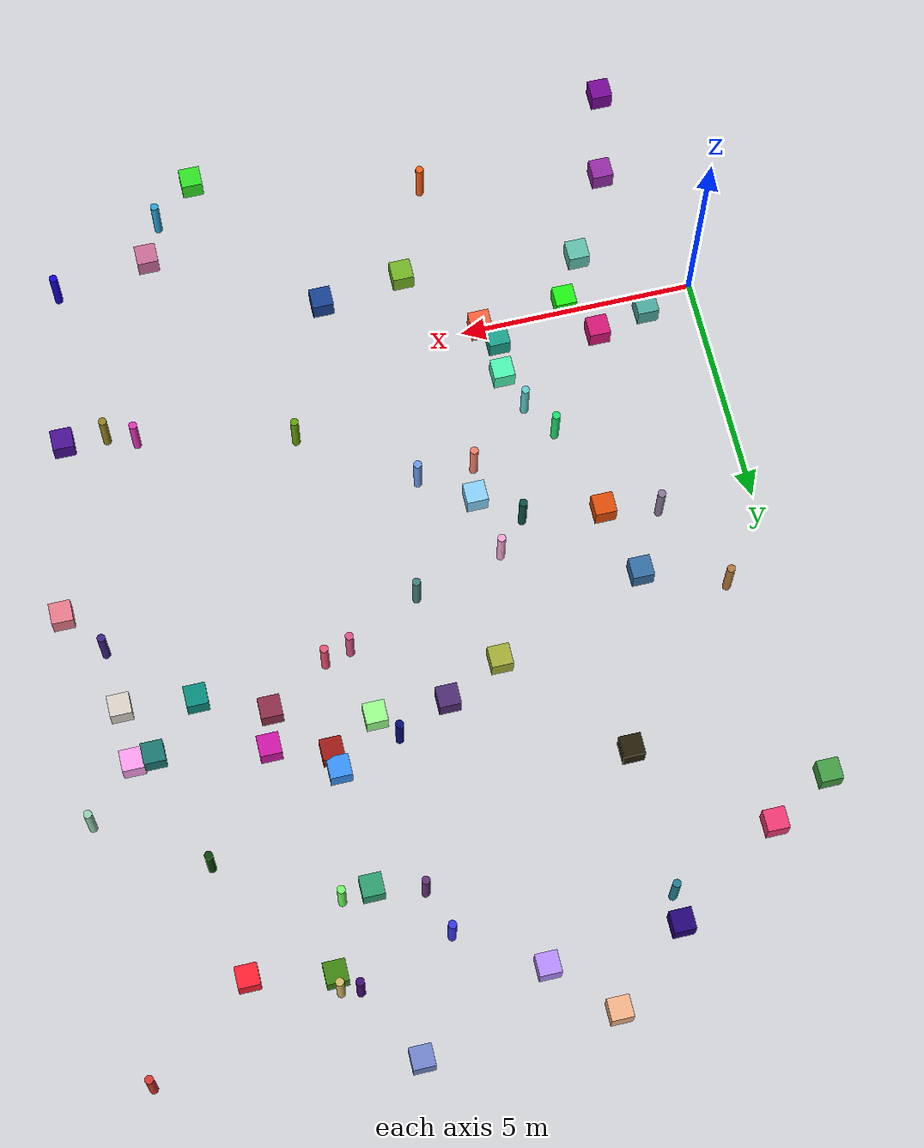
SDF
<sdf version="1.7">
 <world name="warehouse">
  <model name="ground_plane">
   <static>true</static>
   <link name="link">
    <collision name="collision">
     <geometry><plane><normal>0.0 0.0 1</normal><size>1 1</size></plane></geometry>
    </collision>
   </link>
  </model>
  <model name="unit_box_2">
   <static>true</static>
   <pose>10.55 12.86 0 0 0 0</pose>
   <link name="link">
    <collision name="collision">
     <geometry><box><size>0.450000 0.450000 0.450000</size></box></geometry>
    </collision>
    <visual name="visual">
     <geometry><box><size>0.450000 0.450000 0.450000</size></box></geometry>
     <material>
      <ambient>0.23850958302615732 0.5061640008966156 0.061965873634879265 1</ambient>
      <diffuse>0.23850958302615732 0.5061640008966156 0.061965873634879265 1</diffuse>
      <script><uri>file://media/materials/scripts/gazebo.material</uri><name>Gazebo/RandomColor2</name></script>
     </material>
    </visual>
   </link>
  </model>
  <model name="unit_box_3">
   <static>true</static>
   <pose>10.68 7.32 0 0 0 0</pose>
   <link name="link">
    <collision name="collision">
     <geometry><box><size>0.450000 0.450000 0.450000</size></box></geometry>
    </collision>
    <visual name="visual">
     <geometry><box><size>0.450000 0.450000 0.450000</size></box></geometry>
     <material>
      <ambient>0.5432476757430381 0.17729933388200625 0.28257987179646626 1</ambient>
      <diffuse>0.5432476757430381 0.17729933388200625 0.28257987179646626 1</diffuse>
      <script><uri>file://media/materials/scripts/gazebo.material</uri><name>Gazebo/RandomColor3</name></script>
     </material>
    </visual>
   </link>
  </model>
  <model name="unit_box_4">
   <static>true</static>
   <pose>13.61 6.59 0 0 0 0</pose>
   <link name="link">
    <collision name="collision">
     <geometry><box><size>0.450000 0.450000 0.450000</size></box></geometry>
    </collision>
    <visual name="visual">
     <geometry><box><size>0.450000 0.450000 0.450000</size></box></geometry>
     <material>
      <ambient>0.8401298544246089 0.8131445231318308 0.7653261206102966 1</ambient>
      <diffuse>0.8401298544246089 0.8131445231318308 0.7653261206102966 1</diffuse>
      <script><uri>file://media/materials/scripts/gazebo.material</uri><name>Gazebo/RandomColor4</name></script>
     </material>
    </visual>
   </link>
  </model>
  <model name="unit_cylinder_4">
   <static>true</static>
   <pose>4.72 4.29 0 0 0 0</pose>
   <link name="link">
    <collision name="collision">
     <geometry><cylinder><radius>0.085000</radius><length>1.000000</length></cylinder></geometry>
    </collision>
    <visual name="visual">
     <geometry><cylinder><radius>0.085000</radius><length>1.000000</length></cylinder></geometry>
     <material>
      <ambient>0.03826154303175866 0.310535022943797 0.2691551721576553 1</ambient>
      <diffuse>0.03826154303175866 0.310535022943797 0.2691551721576553 1</diffuse>
      <script><uri>file://media/materials/scripts/gazebo.material</uri><name>Gazebo/RandomColor4</name></script>
     </material>
    </visual>
   </link>
  </model>
  <model name="unit_box_5">
   <static>true</static>
   <pose>9.89 -4.94 0 0 0 0</pose>
   <link name="link">
    <collision name="collision">
     <geometry><box><size>0.450000 0.450000 0.450000</size></box></geometry>
    </collision>
    <visual name="visual">
     <geometry><box><size>0.450000 0.450000 0.450000</size></box></geometry>
     <material>
      <ambient>0.18305160549795496 0.8707921544052755 0.13400563533214793 1</ambient>
      <diffuse>0.18305160549795496 0.8707921544052755 0.13400563533214793 1</diffuse>
      <script><uri>file://media/materials/scripts/gazebo.material</uri><name>Gazebo/RandomColor5</name></script>
     </material>
    </visual>
   </link>
  </model>
  <model name="unit_box_6">
   <static>true</static>
   <pose>14.4 4.38 0 0 0 0</pose>
   <link name="link">
    <collision name="collision">
     <geometry><box><size>0.450000 0.450000 0.450000</size></box></geometry>
    </collision>
    <visual name="visual">
     <geometry><box><size>0.450000 0.450000 0.450000</size></box></geometry>
     <material>
      <ambient>0.8923392405059082 0.470771838638417 0.5278958681375123 1</ambient>
      <diffuse>0.8923392405059082 0.470771838638417 0.5278958681375123 1</diffuse>
      <script><uri>file://media/materials/scripts/gazebo.material</uri><name>Gazebo/RandomColor6</name></script>
     </material>
    </visual>
   </link>
  </model>
  <model name="unit_cylinder_7">
   <static>true</static>
   <pose>8.26 8.36 0 0 0 0</pose>
   <link name="link">
    <collision name="collision">
     <geometry><cylinder><radius>0.085000</radius><length>1.000000</length></cylinder></geometry>
    </collision>
    <visual name="visual">
     <geometry><cylinder><radius>0.085000</radius><length>1.000000</length></cylinder></geometry>
     <material>
      <ambient>0.010536000804149181 0.039938422784112415 0.44365025666165325 1</ambient>
      <diffuse>0.010536000804149181 0.039938422784112415 0.44365025666165325 1</diffuse>
      <script><uri>file://media/materials/scripts/gazebo.material</uri><name>Gazebo/RandomColor7</name></script>
     </material>
    </visual>
   </link>
  </model>
  <model name="unit_box_8">
   <static>true</static>
   <pose>9.6 8.85 0 0 0 0</pose>
   <link name="link">
    <collision name="collision">
     <geometry><box><size>0.450000 0.450000 0.450000</size></box></geometry>
    </collision>
    <visual name="visual">
     <geometry><box><size>0.450000 0.450000 0.450000</size></box></geometry>
     <material>
      <ambient>0.21281683753546676 0.5594621285025635 0.9515530543112825 1</ambient>
      <diffuse>0.21281683753546676 0.5594621285025635 0.9515530543112825 1</diffuse>
      <script><uri>file://media/materials/scripts/gazebo.material</uri><name>Gazebo/RandomColor8</name></script>
     </material>
    </visual>
   </link>
  </model>
  <model name="unit_box_9">
   <static>true</static>
   <pose>5.4 14.78 0 0 0 0</pose>
   <link name="link">
    <collision name="collision">
     <geometry><box><size>0.450000 0.450000 0.450000</size></box></geometry>
    </collision>
    <visual name="visual">
     <geometry><box><size>0.450000 0.450000 0.450000</size></box></geometry>
     <material>
      <ambient>0.9377994021996059 0.6914780809308397 0.5269026652407088 1</ambient>
      <diffuse>0.9377994021996059 0.6914780809308397 0.5269026652407088 1</diffuse>
      <script><uri>file://media/materials/scripts/gazebo.material</uri><name>Gazebo/RandomColor9</name></script>
     </material>
    </visual>
   </link>
  </model>
  <model name="unit_box_10">
   <static>true</static>
   <pose>0.16 11.13 0 0 0 0</pose>
   <link name="link">
    <collision name="collision">
     <geometry><box><size>0.450000 0.450000 0.450000</size></box></geometry>
    </collision>
    <visual name="visual">
     <geometry><box><size>0.450000 0.450000 0.450000</size></box></geometry>
     <material>
      <ambient>0.25730476471138275 0.6113861432114318 0.26210039634027194 1</ambient>
      <diffuse>0.25730476471138275 0.6113861432114318 0.26210039634027194 1</diffuse>
      <script><uri>file://media/materials/scripts/gazebo.material</uri><name>Gazebo/RandomColor10</name></script>
     </material>
    </visual>
   </link>
  </model>
  <model name="unit_cylinder_10">
   <static>true</static>
   <pose>9.38 6.47 0 0 0 0</pose>
   <link name="link">
    <collision name="collision">
     <geometry><cylinder><radius>0.085000</radius><length>1.000000</length></cylinder></geometry>
    </collision>
    <visual name="visual">
     <geometry><cylinder><radius>0.085000</radius><length>1.000000</length></cylinder></geometry>
     <material>
      <ambient>0.9181208071983159 0.3168006436108135 0.4392921452807552 1</ambient>
      <diffuse>0.9181208071983159 0.3168006436108135 0.4392921452807552 1</diffuse>
      <script><uri>file://media/materials/scripts/gazebo.material</uri><name>Gazebo/RandomColor10</name></script>
     </material>
    </visual>
   </link>
  </model>
  <model name="unit_box_12">
   <static>true</static>
   <pose>0.66 -5.08 0 0 0 0</pose>
   <link name="link">
    <collision name="collision">
     <geometry><box><size>0.450000 0.450000 0.450000</size></box></geometry>
    </collision>
    <visual name="visual">
     <geometry><box><size>0.450000 0.450000 0.450000</size></box></geometry>
     <material>
      <ambient>0.45986079268229807 0.023242793074265022 0.5792352809576616 1</ambient>
      <diffuse>0.45986079268229807 0.023242793074265022 0.5792352809576616 1</diffuse>
      <script><uri>file://media/materials/scripts/gazebo.material</uri><name>Gazebo/RandomColor12</name></script>
     </material>
    </visual>
   </link>
  </model>
  <model name="unit_cylinder_13">
   <static>true</static>
   <pose>13.69 5.23 0 0 0 0</pose>
   <link name="link">
    <collision name="collision">
     <geometry><cylinder><radius>0.085000</radius><length>1.000000</length></cylinder></geometry>
    </collision>
    <visual name="visual">
     <geometry><cylinder><radius>0.085000</radius><length>1.000000</length></cylinder></geometry>
     <material>
      <ambient>0.23840866738330357 0.12341911439382347 0.4981785556465306 1</ambient>
      <diffuse>0.23840866738330357 0.12341911439382347 0.4981785556465306 1</diffuse>
      <script><uri>file://media/materials/scripts/gazebo.material</uri><name>Gazebo/RandomColor13</name></script>
     </material>
    </visual>
   </link>
  </model>
  <model name="unit_box_15">
   <static>true</static>
   <pose>3.07 4.57 0 0 0 0</pose>
   <link name="link">
    <collision name="collision">
     <geometry><box><size>0.450000 0.450000 0.450000</size></box></geometry>
    </collision>
    <visual name="visual">
     <geometry><box><size>0.450000 0.450000 0.450000</size></box></geometry>
     <material>
      <ambient>0.8661199399045274 0.29588432611453774 0.029544778753045176 1</ambient>
      <diffuse>0.8661199399045274 0.29588432611453774 0.029544778753045176 1</diffuse>
      <script><uri>file://media/materials/scripts/gazebo.material</uri><name>Gazebo/RandomColor15</name></script>
     </material>
    </visual>
   </link>
  </model>
  <model name="unit_cylinder_15">
   <static>true</static>
   <pose>10.52 13.14 0 0 0 0</pose>
   <link name="link">
    <collision name="collision">
     <geometry><cylinder><radius>0.085000</radius><length>1.000000</length></cylinder></geometry>
    </collision>
    <visual name="visual">
     <geometry><cylinder><radius>0.085000</radius><length>1.000000</length></cylinder></geometry>
     <material>
      <ambient>0.8126317924130658 0.7037773503482371 0.380102691503139 1</ambient>
      <diffuse>0.8126317924130658 0.7037773503482371 0.380102691503139 1</diffuse>
      <script><uri>file://media/materials/scripts/gazebo.material</uri><name>Gazebo/RandomColor15</name></script>
     </material>
    </visual>
   </link>
  </model>
  <model name="unit_cylinder_20">
   <static>true</static>
   <pose>12.8 0.52 0 0 0 0</pose>
   <link name="link">
    <collision name="collision">
     <geometry><cylinder><radius>0.085000</radius><length>1.000000</length></cylinder></geometry>
    </collision>
    <visual name="visual">
     <geometry><cylinder><radius>0.085000</radius><length>1.000000</length></cylinder></geometry>
     <material>
      <ambient>0.5755740909761914 0.507086843042378 0.11988730785576618 1</ambient>
      <diffuse>0.5755740909761914 0.507086843042378 0.11988730785576618 1</diffuse>
      <script><uri>file://media/materials/scripts/gazebo.material</uri><name>Gazebo/RandomColor20</name></script>
     </material>
    </visual>
   </link>
  </model>
  <model name="unit_cylinder_23">
   <static>true</static>
   <pose>5.43 2.92 0 0 0 0</pose>
   <link name="link">
    <collision name="collision">
     <geometry><cylinder><radius>0.085000</radius><length>1.000000</length></cylinder></geometry>
    </collision>
    <visual name="visual">
     <geometry><cylinder><radius>0.085000</radius><length>1.000000</length></cylinder></geometry>
     <material>
      <ambient>0.9478658710452448 0.4894878169720396 0.4094010127505088 1</ambient>
      <diffuse>0.9478658710452448 0.4894878169720396 0.4094010127505088 1</diffuse>
      <script><uri>file://media/materials/scripts/gazebo.material</uri><name>Gazebo/RandomColor23</name></script>
     </material>
    </visual>
   </link>
  </model>
  <model name="unit_cylinder_25">
   <static>true</static>
   <pose>12.2 0.75 0 0 0 0</pose>
   <link name="link">
    <collision name="collision">
     <geometry><cylinder><radius>0.085000</radius><length>1.000000</length></cylinder></geometry>
    </collision>
    <visual name="visual">
     <geometry><cylinder><radius>0.085000</radius><length>1.000000</length></cylinder></geometry>
     <material>
      <ambient>0.8865542128697605 0.18408492666172915 0.717390722208998 1</ambient>
      <diffuse>0.8865542128697605 0.18408492666172915 0.717390722208998 1</diffuse>
      <script><uri>file://media/materials/scripts/gazebo.material</uri><name>Gazebo/RandomColor25</name></script>
     </material>
    </visual>
   </link>
  </model>
  <model name="unit_cylinder_26">
   <static>true</static>
   <pose>0.96 6.66 0 0 0 0</pose>
   <link name="link">
    <collision name="collision">
     <geometry><cylinder><radius>0.085000</radius><length>1.000000</length></cylinder></geometry>
    </collision>
    <visual name="visual">
     <geometry><cylinder><radius>0.085000</radius><length>1.000000</length></cylinder></geometry>
     <material>
      <ambient>0.686953396201328 0.4656829672532363 0.2211493216272601 1</ambient>
      <diffuse>0.686953396201328 0.4656829672532363 0.2211493216272601 1</diffuse>
      <script><uri>file://media/materials/scripts/gazebo.material</uri><name>Gazebo/RandomColor26</name></script>
     </material>
    </visual>
   </link>
  </model>
  <model name="unit_box_27">
   <static>true</static>
   <pose>2.14 -1.31 0 0 0 0</pose>
   <link name="link">
    <collision name="collision">
     <geometry><box><size>0.450000 0.450000 0.450000</size></box></geometry>
    </collision>
    <visual name="visual">
     <geometry><box><size>0.450000 0.450000 0.450000</size></box></geometry>
     <material>
      <ambient>0.37025055253567474 0.7417899858536134 0.6649591891728481 1</ambient>
      <diffuse>0.37025055253567474 0.7417899858536134 0.6649591891728481 1</diffuse>
      <script><uri>file://media/materials/scripts/gazebo.material</uri><name>Gazebo/RandomColor27</name></script>
     </material>
    </visual>
   </link>
  </model>
  <model name="unit_box_29">
   <static>true</static>
   <pose>7.74 -1.43 0 0 0 0</pose>
   <link name="link">
    <collision name="collision">
     <geometry><box><size>0.450000 0.450000 0.450000</size></box></geometry>
    </collision>
    <visual name="visual">
     <geometry><box><size>0.450000 0.450000 0.450000</size></box></geometry>
     <material>
      <ambient>0.08853986490662569 0.25148542035982946 0.5655840623429138 1</ambient>
      <diffuse>0.08853986490662569 0.25148542035982946 0.5655840623429138 1</diffuse>
      <script><uri>file://media/materials/scripts/gazebo.material</uri><name>Gazebo/RandomColor29</name></script>
     </material>
    </visual>
   </link>
  </model>
  <model name="unit_cylinder_31">
   <static>true</static>
   <pose>13.21 -3.01 0 0 0 0</pose>
   <link name="link">
    <collision name="collision">
     <geometry><cylinder><radius>0.085000</radius><length>1.000000</length></cylinder></geometry>
    </collision>
    <visual name="visual">
     <geometry><cylinder><radius>0.085000</radius><length>1.000000</length></cylinder></geometry>
     <material>
      <ambient>0.06348887067232933 0.000225115533346254 0.8224507910021019 1</ambient>
      <diffuse>0.06348887067232933 0.000225115533346254 0.8224507910021019 1</diffuse>
      <script><uri>file://media/materials/scripts/gazebo.material</uri><name>Gazebo/RandomColor31</name></script>
     </material>
    </visual>
   </link>
  </model>
  <model name="unit_box_33">
   <static>true</static>
   <pose>6.53 13.63 0 0 0 0</pose>
   <link name="link">
    <collision name="collision">
     <geometry><box><size>0.450000 0.450000 0.450000</size></box></geometry>
    </collision>
    <visual name="visual">
     <geometry><box><size>0.450000 0.450000 0.450000</size></box></geometry>
     <material>
      <ambient>0.702403424416619 0.5418101147669424 0.9927968698167303 1</ambient>
      <diffuse>0.702403424416619 0.5418101147669424 0.9927968698167303 1</diffuse>
      <script><uri>file://media/materials/scripts/gazebo.material</uri><name>Gazebo/RandomColor33</name></script>
     </material>
    </visual>
   </link>
  </model>
  <model name="unit_box_34">
   <static>true</static>
   <pose>9.5 11.35 0 0 0 0</pose>
   <link name="link">
    <collision name="collision">
     <geometry><box><size>0.450000 0.450000 0.450000</size></box></geometry>
    </collision>
    <visual name="visual">
     <geometry><box><size>0.450000 0.450000 0.450000</size></box></geometry>
     <material>
      <ambient>0.1780079980085253 0.611468211793352 0.43104366243897374 1</ambient>
      <diffuse>0.1780079980085253 0.611468211793352 0.43104366243897374 1</diffuse>
      <script><uri>file://media/materials/scripts/gazebo.material</uri><name>Gazebo/RandomColor34</name></script>
     </material>
    </visual>
   </link>
  </model>
  <model name="unit_cylinder_35">
   <static>true</static>
   <pose>8.83 6.32 0 0 0 0</pose>
   <link name="link">
    <collision name="collision">
     <geometry><cylinder><radius>0.085000</radius><length>1.000000</length></cylinder></geometry>
    </collision>
    <visual name="visual">
     <geometry><cylinder><radius>0.085000</radius><length>1.000000</length></cylinder></geometry>
     <material>
      <ambient>0.8539151065352031 0.3215232119992322 0.5152940750154221 1</ambient>
      <diffuse>0.8539151065352031 0.3215232119992322 0.5152940750154221 1</diffuse>
      <script><uri>file://media/materials/scripts/gazebo.material</uri><name>Gazebo/RandomColor35</name></script>
     </material>
    </visual>
   </link>
  </model>
  <model name="unit_box_38">
   <static>true</static>
   <pose>4.37 1.07 0 0 0 0</pose>
   <link name="link">
    <collision name="collision">
     <geometry><box><size>0.450000 0.450000 0.450000</size></box></geometry>
    </collision>
    <visual name="visual">
     <geometry><box><size>0.450000 0.450000 0.450000</size></box></geometry>
     <material>
      <ambient>0.2927778788437656 0.9480182921900523 0.684363040343383 1</ambient>
      <diffuse>0.2927778788437656 0.9480182921900523 0.684363040343383 1</diffuse>
      <script><uri>file://media/materials/scripts/gazebo.material</uri><name>Gazebo/RandomColor38</name></script>
     </material>
    </visual>
   </link>
  </model>
  <model name="unit_box_39">
   <static>true</static>
   <pose>11.18 -3.3 0 0 0 0</pose>
   <link name="link">
    <collision name="collision">
     <geometry><box><size>0.450000 0.450000 0.450000</size></box></geometry>
    </collision>
    <visual name="visual">
     <geometry><box><size>0.450000 0.450000 0.450000</size></box></geometry>
     <material>
      <ambient>0.7786381245641559 0.4130389778716671 0.5851752342778984 1</ambient>
      <diffuse>0.7786381245641559 0.4130389778716671 0.5851752342778984 1</diffuse>
      <script><uri>file://media/materials/scripts/gazebo.material</uri><name>Gazebo/RandomColor39</name></script>
     </material>
    </visual>
   </link>
  </model>
  <model name="unit_cylinder_39">
   <static>true</static>
   <pose>8.47 11.57 0 0 0 0</pose>
   <link name="link">
    <collision name="collision">
     <geometry><cylinder><radius>0.085000</radius><length>1.000000</length></cylinder></geometry>
    </collision>
    <visual name="visual">
     <geometry><cylinder><radius>0.085000</radius><length>1.000000</length></cylinder></geometry>
     <material>
      <ambient>0.3877980092694633 0.1951527330482452 0.438505996996847 1</ambient>
      <diffuse>0.3877980092694633 0.1951527330482452 0.438505996996847 1</diffuse>
      <script><uri>file://media/materials/scripts/gazebo.material</uri><name>Gazebo/RandomColor39</name></script>
     </material>
    </visual>
   </link>
  </model>
  <model name="unit_box_40">
   <static>true</static>
   <pose>3.79 13.4 0 0 0 0</pose>
   <link name="link">
    <collision name="collision">
     <geometry><box><size>0.450000 0.450000 0.450000</size></box></geometry>
    </collision>
    <visual name="visual">
     <geometry><box><size>0.450000 0.450000 0.450000</size></box></geometry>
     <material>
      <ambient>0.1386908573366249 0.010163796166887895 0.45943917340243945 1</ambient>
      <diffuse>0.1386908573366249 0.010163796166887895 0.45943917340243945 1</diffuse>
      <script><uri>file://media/materials/scripts/gazebo.material</uri><name>Gazebo/RandomColor40</name></script>
     </material>
    </visual>
   </link>
  </model>
  <model name="unit_cylinder_41">
   <static>true</static>
   <pose>6.64 2.96 0 0 0 0</pose>
   <link name="link">
    <collision name="collision">
     <geometry><cylinder><radius>0.085000</radius><length>1.000000</length></cylinder></geometry>
    </collision>
    <visual name="visual">
     <geometry><cylinder><radius>0.085000</radius><length>1.000000</length></cylinder></geometry>
     <material>
      <ambient>0.41349737645447837 0.5975948967662924 0.911855635894792 1</ambient>
      <diffuse>0.41349737645447837 0.5975948967662924 0.911855635894792 1</diffuse>
      <script><uri>file://media/materials/scripts/gazebo.material</uri><name>Gazebo/RandomColor41</name></script>
     </material>
    </visual>
   </link>
  </model>
  <model name="unit_cylinder_42">
   <static>true</static>
   <pose>14.41 14.14 0 0 0 0</pose>
   <link name="link">
    <collision name="collision">
     <geometry><cylinder><radius>0.085000</radius><length>1.000000</length></cylinder></geometry>
    </collision>
    <visual name="visual">
     <geometry><cylinder><radius>0.085000</radius><length>1.000000</length></cylinder></geometry>
     <material>
      <ambient>0.8209584722352827 0.2142266768646206 0.18860181266316212 1</ambient>
      <diffuse>0.8209584722352827 0.2142266768646206 0.18860181266316212 1</diffuse>
      <script><uri>file://media/materials/scripts/gazebo.material</uri><name>Gazebo/RandomColor42</name></script>
     </material>
    </visual>
   </link>
  </model>
  <model name="unit_cylinder_45">
   <static>true</static>
   <pose>10.11 11.38 0 0 0 0</pose>
   <link name="link">
    <collision name="collision">
     <geometry><cylinder><radius>0.085000</radius><length>1.000000</length></cylinder></geometry>
    </collision>
    <visual name="visual">
     <geometry><cylinder><radius>0.085000</radius><length>1.000000</length></cylinder></geometry>
     <material>
      <ambient>0.4287954457153922 0.9811067562694662 0.38207042416312464 1</ambient>
      <diffuse>0.4287954457153922 0.9811067562694662 0.38207042416312464 1</diffuse>
      <script><uri>file://media/materials/scripts/gazebo.material</uri><name>Gazebo/RandomColor45</name></script>
     </material>
    </visual>
   </link>
  </model>
  <model name="unit_box_46">
   <static>true</static>
   <pose>13.14 7.72 0 0 0 0</pose>
   <link name="link">
    <collision name="collision">
     <geometry><box><size>0.450000 0.450000 0.450000</size></box></geometry>
    </collision>
    <visual name="visual">
     <geometry><box><size>0.450000 0.450000 0.450000</size></box></geometry>
     <material>
      <ambient>0.10025197685317166 0.4576076244781885 0.43779821245072115 1</ambient>
      <diffuse>0.10025197685317166 0.4576076244781885 0.43779821245072115 1</diffuse>
      <script><uri>file://media/materials/scripts/gazebo.material</uri><name>Gazebo/RandomColor46</name></script>
     </material>
    </visual>
   </link>
  </model>
  <model name="unit_cylinder_47">
   <static>true</static>
   <pose>8.17 12.54 0 0 0 0</pose>
   <link name="link">
    <collision name="collision">
     <geometry><cylinder><radius>0.085000</radius><length>1.000000</length></cylinder></geometry>
    </collision>
    <visual name="visual">
     <geometry><cylinder><radius>0.085000</radius><length>1.000000</length></cylinder></geometry>
     <material>
      <ambient>0.2012320646055873 0.20602482604131478 0.8990667952803477 1</ambient>
      <diffuse>0.2012320646055873 0.20602482604131478 0.8990667952803477 1</diffuse>
      <script><uri>file://media/materials/scripts/gazebo.material</uri><name>Gazebo/RandomColor47</name></script>
     </material>
    </visual>
   </link>
  </model>
  <model name="unit_box_48">
   <static>true</static>
   <pose>9.66 8.45 0 0 0 0</pose>
   <link name="link">
    <collision name="collision">
     <geometry><box><size>0.450000 0.450000 0.450000</size></box></geometry>
    </collision>
    <visual name="visual">
     <geometry><box><size>0.450000 0.450000 0.450000</size></box></geometry>
     <material>
      <ambient>0.605724075882297 0.10081493656568108 0.08209861471716706 1</ambient>
      <diffuse>0.605724075882297 0.10081493656568108 0.08209861471716706 1</diffuse>
      <script><uri>file://media/materials/scripts/gazebo.material</uri><name>Gazebo/RandomColor48</name></script>
     </material>
    </visual>
   </link>
  </model>
  <model name="unit_cylinder_49">
   <static>true</static>
   <pose>10.14 13.22 0 0 0 0</pose>
   <link name="link">
    <collision name="collision">
     <geometry><cylinder><radius>0.085000</radius><length>1.000000</length></cylinder></geometry>
    </collision>
    <visual name="visual">
     <geometry><cylinder><radius>0.085000</radius><length>1.000000</length></cylinder></geometry>
     <material>
      <ambient>0.25745490974547813 0.03996092741751278 0.45660745375823275 1</ambient>
      <diffuse>0.25745490974547813 0.03996092741751278 0.45660745375823275 1</diffuse>
      <script><uri>file://media/materials/scripts/gazebo.material</uri><name>Gazebo/RandomColor49</name></script>
     </material>
    </visual>
   </link>
  </model>
  <model name="unit_box_50">
   <static>true</static>
   <pose>5.94 7.31 0 0 0 0</pose>
   <link name="link">
    <collision name="collision">
     <geometry><box><size>0.450000 0.450000 0.450000</size></box></geometry>
    </collision>
    <visual name="visual">
     <geometry><box><size>0.450000 0.450000 0.450000</size></box></geometry>
     <material>
      <ambient>0.6305234976059718 0.6696769162737498 0.20605627490768474 1</ambient>
      <diffuse>0.6305234976059718 0.6696769162737498 0.20605627490768474 1</diffuse>
      <script><uri>file://media/materials/scripts/gazebo.material</uri><name>Gazebo/RandomColor50</name></script>
     </material>
    </visual>
   </link>
  </model>
  <model name="unit_cylinder_50">
   <static>true</static>
   <pose>4.06 1.81 0 0 0 0</pose>
   <link name="link">
    <collision name="collision">
     <geometry><cylinder><radius>0.085000</radius><length>1.000000</length></cylinder></geometry>
    </collision>
    <visual name="visual">
     <geometry><cylinder><radius>0.085000</radius><length>1.000000</length></cylinder></geometry>
     <material>
      <ambient>0.35264039181900086 0.7894920764071337 0.783793385177628 1</ambient>
      <diffuse>0.35264039181900086 0.7894920764071337 0.783793385177628 1</diffuse>
      <script><uri>file://media/materials/scripts/gazebo.material</uri><name>Gazebo/RandomColor50</name></script>
     </material>
    </visual>
   </link>
  </model>
  <model name="unit_box_54">
   <static>true</static>
   <pose>10.86 8.09 0 0 0 0</pose>
   <link name="link">
    <collision name="collision">
     <geometry><box><size>0.450000 0.450000 0.450000</size></box></geometry>
    </collision>
    <visual name="visual">
     <geometry><box><size>0.450000 0.450000 0.450000</size></box></geometry>
     <material>
      <ambient>0.7998472057367785 0.08087824899829865 0.6432411266776925 1</ambient>
      <diffuse>0.7998472057367785 0.08087824899829865 0.6432411266776925 1</diffuse>
      <script><uri>file://media/materials/scripts/gazebo.material</uri><name>Gazebo/RandomColor54</name></script>
     </material>
    </visual>
   </link>
  </model>
  <model name="unit_cylinder_54">
   <static>true</static>
   <pose>14.61 8.78 0 0 0 0</pose>
   <link name="link">
    <collision name="collision">
     <geometry><cylinder><radius>0.085000</radius><length>1.000000</length></cylinder></geometry>
    </collision>
    <visual name="visual">
     <geometry><cylinder><radius>0.085000</radius><length>1.000000</length></cylinder></geometry>
     <material>
      <ambient>0.5859668088460298 0.8143870872489025 0.6865961629997342 1</ambient>
      <diffuse>0.5859668088460298 0.8143870872489025 0.6865961629997342 1</diffuse>
      <script><uri>file://media/materials/scripts/gazebo.material</uri><name>Gazebo/RandomColor54</name></script>
     </material>
    </visual>
   </link>
  </model>
  <model name="unit_cylinder_56">
   <static>true</static>
   <pose>12.47 10.13 0 0 0 0</pose>
   <link name="link">
    <collision name="collision">
     <geometry><cylinder><radius>0.085000</radius><length>1.000000</length></cylinder></geometry>
    </collision>
    <visual name="visual">
     <geometry><cylinder><radius>0.085000</radius><length>1.000000</length></cylinder></geometry>
     <material>
      <ambient>0.05102335867061558 0.2537253547134757 0.03383159158420368 1</ambient>
      <diffuse>0.05102335867061558 0.2537253547134757 0.03383159158420368 1</diffuse>
      <script><uri>file://media/materials/scripts/gazebo.material</uri><name>Gazebo/RandomColor56</name></script>
     </material>
    </visual>
   </link>
  </model>
  <model name="unit_box_59">
   <static>true</static>
   <pose>2.68 6.1 0 0 0 0</pose>
   <link name="link">
    <collision name="collision">
     <geometry><box><size>0.450000 0.450000 0.450000</size></box></geometry>
    </collision>
    <visual name="visual">
     <geometry><box><size>0.450000 0.450000 0.450000</size></box></geometry>
     <material>
      <ambient>0.2042996546160466 0.42713352780091296 0.6390738888633645 1</ambient>
      <diffuse>0.2042996546160466 0.42713352780091296 0.6390738888633645 1</diffuse>
      <script><uri>file://media/materials/scripts/gazebo.material</uri><name>Gazebo/RandomColor59</name></script>
     </material>
    </visual>
   </link>
  </model>
  <model name="unit_cylinder_59">
   <static>true</static>
   <pose>7.25 5.49 0 0 0 0</pose>
   <link name="link">
    <collision name="collision">
     <geometry><cylinder><radius>0.085000</radius><length>1.000000</length></cylinder></geometry>
    </collision>
    <visual name="visual">
     <geometry><cylinder><radius>0.085000</radius><length>1.000000</length></cylinder></geometry>
     <material>
      <ambient>0.26046538899934624 0.492396915082982 0.4865047837304928 1</ambient>
      <diffuse>0.26046538899934624 0.492396915082982 0.4865047837304928 1</diffuse>
      <script><uri>file://media/materials/scripts/gazebo.material</uri><name>Gazebo/RandomColor59</name></script>
     </material>
    </visual>
   </link>
  </model>
  <model name="unit_box_61">
   <static>true</static>
   <pose>5.59 3.71 0 0 0 0</pose>
   <link name="link">
    <collision name="collision">
     <geometry><box><size>0.450000 0.450000 0.450000</size></box></geometry>
    </collision>
    <visual name="visual">
     <geometry><box><size>0.450000 0.450000 0.450000</size></box></geometry>
     <material>
      <ambient>0.523514731618297 0.8060988676416797 0.9675638661988653 1</ambient>
      <diffuse>0.523514731618297 0.8060988676416797 0.9675638661988653 1</diffuse>
      <script><uri>file://media/materials/scripts/gazebo.material</uri><name>Gazebo/RandomColor61</name></script>
     </material>
    </visual>
   </link>
  </model>
  <model name="unit_box_62">
   <static>true</static>
   <pose>4.57 -0.12 0 0 0 0</pose>
   <link name="link">
    <collision name="collision">
     <geometry><box><size>0.450000 0.450000 0.450000</size></box></geometry>
    </collision>
    <visual name="visual">
     <geometry><box><size>0.450000 0.450000 0.450000</size></box></geometry>
     <material>
      <ambient>0.9959005780951022 0.36970751850778094 0.2223765498812077 1</ambient>
      <diffuse>0.9959005780951022 0.36970751850778094 0.2223765498812077 1</diffuse>
      <script><uri>file://media/materials/scripts/gazebo.material</uri><name>Gazebo/RandomColor62</name></script>
     </material>
    </visual>
   </link>
  </model>
  <model name="unit_cylinder_65">
   <static>true</static>
   <pose>3.75 12.74 0 0 0 0</pose>
   <link name="link">
    <collision name="collision">
     <geometry><cylinder><radius>0.085000</radius><length>1.000000</length></cylinder></geometry>
    </collision>
    <visual name="visual">
     <geometry><cylinder><radius>0.085000</radius><length>1.000000</length></cylinder></geometry>
     <material>
      <ambient>0.13176093010032264 0.48754617373114173 0.5693442487533782 1</ambient>
      <diffuse>0.13176093010032264 0.48754617373114173 0.5693442487533782 1</diffuse>
      <script><uri>file://media/materials/scripts/gazebo.material</uri><name>Gazebo/RandomColor65</name></script>
     </material>
    </visual>
   </link>
  </model>
  <model name="unit_box_67">
   <static>true</static>
   <pose>3.84 9.75 0 0 0 0</pose>
   <link name="link">
    <collision name="collision">
     <geometry><box><size>0.450000 0.450000 0.450000</size></box></geometry>
    </collision>
    <visual name="visual">
     <geometry><box><size>0.450000 0.450000 0.450000</size></box></geometry>
     <material>
      <ambient>0.14077522819482313 0.11579308115572773 0.03395788350114193 1</ambient>
      <diffuse>0.14077522819482313 0.11579308115572773 0.03395788350114193 1</diffuse>
      <script><uri>file://media/materials/scripts/gazebo.material</uri><name>Gazebo/RandomColor67</name></script>
     </material>
    </visual>
   </link>
  </model>
  <model name="unit_box_69">
   <static>true</static>
   <pose>8.66 7.91 0 0 0 0</pose>
   <link name="link">
    <collision name="collision">
     <geometry><box><size>0.450000 0.450000 0.450000</size></box></geometry>
    </collision>
    <visual name="visual">
     <geometry><box><size>0.450000 0.450000 0.450000</size></box></geometry>
     <material>
      <ambient>0.5927844495455863 0.9980428060357233 0.5343772812028614 1</ambient>
      <diffuse>0.5927844495455863 0.9980428060357233 0.5343772812028614 1</diffuse>
      <script><uri>file://media/materials/scripts/gazebo.material</uri><name>Gazebo/RandomColor69</name></script>
     </material>
    </visual>
   </link>
  </model>
  <model name="unit_box_71">
   <static>true</static>
   <pose>2.68 -0.3 0 0 0 0</pose>
   <link name="link">
    <collision name="collision">
     <geometry><box><size>0.450000 0.450000 0.450000</size></box></geometry>
    </collision>
    <visual name="visual">
     <geometry><box><size>0.450000 0.450000 0.450000</size></box></geometry>
     <material>
      <ambient>0.11210185905878645 0.9461158609950033 0.07738603134057331 1</ambient>
      <diffuse>0.11210185905878645 0.9461158609950033 0.07738603134057331 1</diffuse>
      <script><uri>file://media/materials/scripts/gazebo.material</uri><name>Gazebo/RandomColor71</name></script>
     </material>
    </visual>
   </link>
  </model>
  <model name="unit_cylinder_71">
   <static>true</static>
   <pose>3.58 2.53 0 0 0 0</pose>
   <link name="link">
    <collision name="collision">
     <geometry><cylinder><radius>0.085000</radius><length>1.000000</length></cylinder></geometry>
    </collision>
    <visual name="visual">
     <geometry><cylinder><radius>0.085000</radius><length>1.000000</length></cylinder></geometry>
     <material>
      <ambient>0.09981556840185157 0.8637271090058668 0.4143514928484049 1</ambient>
      <diffuse>0.09981556840185157 0.8637271090058668 0.4143514928484049 1</diffuse>
      <script><uri>file://media/materials/scripts/gazebo.material</uri><name>Gazebo/RandomColor71</name></script>
     </material>
    </visual>
   </link>
  </model>
  <model name="unit_box_72">
   <static>true</static>
   <pose>1.47 11.86 0 0 0 0</pose>
   <link name="link">
    <collision name="collision">
     <geometry><box><size>0.450000 0.450000 0.450000</size></box></geometry>
    </collision>
    <visual name="visual">
     <geometry><box><size>0.450000 0.450000 0.450000</size></box></geometry>
     <material>
      <ambient>0.9250623621863483 0.21653585141902598 0.4470640349881442 1</ambient>
      <diffuse>0.9250623621863483 0.21653585141902598 0.4470640349881442 1</diffuse>
      <script><uri>file://media/materials/scripts/gazebo.material</uri><name>Gazebo/RandomColor72</name></script>
     </material>
    </visual>
   </link>
  </model>
  <model name="unit_box_74">
   <static>true</static>
   <pose>5.93 -1.68 0 0 0 0</pose>
   <link name="link">
    <collision name="collision">
     <geometry><box><size>0.450000 0.450000 0.450000</size></box></geometry>
    </collision>
    <visual name="visual">
     <geometry><box><size>0.450000 0.450000 0.450000</size></box></geometry>
     <material>
      <ambient>0.4438858994824437 0.6968247603557725 0.13777167728775686 1</ambient>
      <diffuse>0.4438858994824437 0.6968247603557725 0.13777167728775686 1</diffuse>
      <script><uri>file://media/materials/scripts/gazebo.material</uri><name>Gazebo/RandomColor74</name></script>
     </material>
    </visual>
   </link>
  </model>
  <model name="unit_cylinder_74">
   <static>true</static>
   <pose>5.34 4.95 0 0 0 0</pose>
   <link name="link">
    <collision name="collision">
     <geometry><cylinder><radius>0.085000</radius><length>1.000000</length></cylinder></geometry>
    </collision>
    <visual name="visual">
     <geometry><cylinder><radius>0.085000</radius><length>1.000000</length></cylinder></geometry>
     <material>
      <ambient>0.9563099511265352 0.6280682894849667 0.8289432899159922 1</ambient>
      <diffuse>0.9563099511265352 0.6280682894849667 0.8289432899159922 1</diffuse>
      <script><uri>file://media/materials/scripts/gazebo.material</uri><name>Gazebo/RandomColor74</name></script>
     </material>
    </visual>
   </link>
  </model>
  <model name="unit_box_78">
   <static>true</static>
   <pose>13.58 7.77 0 0 0 0</pose>
   <link name="link">
    <collision name="collision">
     <geometry><box><size>0.450000 0.450000 0.450000</size></box></geometry>
    </collision>
    <visual name="visual">
     <geometry><box><size>0.450000 0.450000 0.450000</size></box></geometry>
     <material>
      <ambient>0.9850924715495643 0.6042477527806853 0.9182737187920098 1</ambient>
      <diffuse>0.9850924715495643 0.6042477527806853 0.9182737187920098 1</diffuse>
      <script><uri>file://media/materials/scripts/gazebo.material</uri><name>Gazebo/RandomColor78</name></script>
     </material>
    </visual>
   </link>
  </model>
  <model name="unit_cylinder_81">
   <static>true</static>
   <pose>1.9 4.74 0 0 0 0</pose>
   <link name="link">
    <collision name="collision">
     <geometry><cylinder><radius>0.085000</radius><length>1.000000</length></cylinder></geometry>
    </collision>
    <visual name="visual">
     <geometry><cylinder><radius>0.085000</radius><length>1.000000</length></cylinder></geometry>
     <material>
      <ambient>0.5308084278940789 0.4481121746108835 0.581603014593629 1</ambient>
      <diffuse>0.5308084278940789 0.4481121746108835 0.581603014593629 1</diffuse>
      <script><uri>file://media/materials/scripts/gazebo.material</uri><name>Gazebo/RandomColor81</name></script>
     </material>
    </visual>
   </link>
  </model>
  <model name="unit_box_82">
   <static>true</static>
   <pose>12.22 12.55 0 0 0 0</pose>
   <link name="link">
    <collision name="collision">
     <geometry><box><size>0.450000 0.450000 0.450000</size></box></geometry>
    </collision>
    <visual name="visual">
     <geometry><box><size>0.450000 0.450000 0.450000</size></box></geometry>
     <material>
      <ambient>0.9811720095047642 0.12247599974686108 0.18467837393876463 1</ambient>
      <diffuse>0.9811720095047642 0.12247599974686108 0.18467837393876463 1</diffuse>
      <script><uri>file://media/materials/scripts/gazebo.material</uri><name>Gazebo/RandomColor82</name></script>
     </material>
    </visual>
   </link>
  </model>
  <model name="unit_cylinder_83">
   <static>true</static>
   <pose>10.79 -4.23 0 0 0 0</pose>
   <link name="link">
    <collision name="collision">
     <geometry><cylinder><radius>0.085000</radius><length>1.000000</length></cylinder></geometry>
    </collision>
    <visual name="visual">
     <geometry><cylinder><radius>0.085000</radius><length>1.000000</length></cylinder></geometry>
     <material>
      <ambient>0.1523099545182035 0.6279569836868404 0.8379359753998362 1</ambient>
      <diffuse>0.1523099545182035 0.6279569836868404 0.8379359753998362 1</diffuse>
      <script><uri>file://media/materials/scripts/gazebo.material</uri><name>Gazebo/RandomColor83</name></script>
     </material>
    </visual>
   </link>
  </model>
  <model name="unit_box_86">
   <static>true</static>
   <pose>7.16 7.9 0 0 0 0</pose>
   <link name="link">
    <collision name="collision">
     <geometry><box><size>0.450000 0.450000 0.450000</size></box></geometry>
    </collision>
    <visual name="visual">
     <geometry><box><size>0.450000 0.450000 0.450000</size></box></geometry>
     <material>
      <ambient>0.308476544766462 0.16556459544225466 0.4440877789137474 1</ambient>
      <diffuse>0.308476544766462 0.16556459544225466 0.4440877789137474 1</diffuse>
      <script><uri>file://media/materials/scripts/gazebo.material</uri><name>Gazebo/RandomColor86</name></script>
     </material>
    </visual>
   </link>
  </model>
  <model name="unit_box_87">
   <static>true</static>
   <pose>1.03 0.29 0 0 0 0</pose>
   <link name="link">
    <collision name="collision">
     <geometry><box><size>0.450000 0.450000 0.450000</size></box></geometry>
    </collision>
    <visual name="visual">
     <geometry><box><size>0.450000 0.450000 0.450000</size></box></geometry>
     <material>
      <ambient>0.2842797138392077 0.6553832368972945 0.6072361736949858 1</ambient>
      <diffuse>0.2842797138392077 0.6553832368972945 0.6072361736949858 1</diffuse>
      <script><uri>file://media/materials/scripts/gazebo.material</uri><name>Gazebo/RandomColor87</name></script>
     </material>
    </visual>
   </link>
  </model>
  <model name="unit_box_91">
   <static>true</static>
   <pose>2.16 0.56 0 0 0 0</pose>
   <link name="link">
    <collision name="collision">
     <geometry><box><size>0.450000 0.450000 0.450000</size></box></geometry>
    </collision>
    <visual name="visual">
     <geometry><box><size>0.450000 0.450000 0.450000</size></box></geometry>
     <material>
      <ambient>0.8199452551754208 0.08096085019785682 0.4519940224178717 1</ambient>
      <diffuse>0.8199452551754208 0.08096085019785682 0.4519940224178717 1</diffuse>
      <script><uri>file://media/materials/scripts/gazebo.material</uri><name>Gazebo/RandomColor91</name></script>
     </material>
    </visual>
   </link>
  </model>
  <model name="unit_box_92">
   <static>true</static>
   <pose>12.08 6.74 0 0 0 0</pose>
   <link name="link">
    <collision name="collision">
     <geometry><box><size>0.450000 0.450000 0.450000</size></box></geometry>
    </collision>
    <visual name="visual">
     <geometry><box><size>0.450000 0.450000 0.450000</size></box></geometry>
     <material>
      <ambient>0.030768982034925174 0.5424404431607567 0.48985190800933787 1</ambient>
      <diffuse>0.030768982034925174 0.5424404431607567 0.48985190800933787 1</diffuse>
      <script><uri>file://media/materials/scripts/gazebo.material</uri><name>Gazebo/RandomColor92</name></script>
     </material>
    </visual>
   </link>
  </model>
  <model name="unit_cylinder_93">
   <static>true</static>
   <pose>8.92 1.44 0 0 0 0</pose>
   <link name="link">
    <collision name="collision">
     <geometry><cylinder><radius>0.085000</radius><length>1.000000</length></cylinder></geometry>
    </collision>
    <visual name="visual">
     <geometry><cylinder><radius>0.085000</radius><length>1.000000</length></cylinder></geometry>
     <material>
      <ambient>0.38662270586547054 0.6240447379577624 0.010282231439682765 1</ambient>
      <diffuse>0.38662270586547054 0.6240447379577624 0.010282231439682765 1</diffuse>
      <script><uri>file://media/materials/scripts/gazebo.material</uri><name>Gazebo/RandomColor93</name></script>
     </material>
    </visual>
   </link>
  </model>
  <model name="unit_box_95">
   <static>true</static>
   <pose>4.29 0.31 0 0 0 0</pose>
   <link name="link">
    <collision name="collision">
     <geometry><box><size>0.450000 0.450000 0.450000</size></box></geometry>
    </collision>
    <visual name="visual">
     <geometry><box><size>0.450000 0.450000 0.450000</size></box></geometry>
     <material>
      <ambient>0.10113101398607938 0.6237026157800097 0.5356419269332711 1</ambient>
      <diffuse>0.10113101398607938 0.6237026157800097 0.5356419269332711 1</diffuse>
      <script><uri>file://media/materials/scripts/gazebo.material</uri><name>Gazebo/RandomColor95</name></script>
     </material>
    </visual>
   </link>
  </model>
  <model name="unit_box_96">
   <static>true</static>
   <pose>13.7 0.58 0 0 0 0</pose>
   <link name="link">
    <collision name="collision">
     <geometry><box><size>0.450000 0.450000 0.450000</size></box></geometry>
    </collision>
    <visual name="visual">
     <geometry><box><size>0.450000 0.450000 0.450000</size></box></geometry>
     <material>
      <ambient>0.281032886789779 0.05870147530111891 0.5671691842968823 1</ambient>
      <diffuse>0.281032886789779 0.05870147530111891 0.5671691842968823 1</diffuse>
      <script><uri>file://media/materials/scripts/gazebo.material</uri><name>Gazebo/RandomColor96</name></script>
     </material>
    </visual>
   </link>
  </model>
  <model name="unit_box_97">
   <static>true</static>
   <pose>9.3 14.83 0 0 0 0</pose>
   <link name="link">
    <collision name="collision">
     <geometry><box><size>0.450000 0.450000 0.450000</size></box></geometry>
    </collision>
    <visual name="visual">
     <geometry><box><size>0.450000 0.450000 0.450000</size></box></geometry>
     <material>
      <ambient>0.4336894060817085 0.5187096351870226 0.7894159641878359 1</ambient>
      <diffuse>0.4336894060817085 0.5187096351870226 0.7894159641878359 1</diffuse>
      <script><uri>file://media/materials/scripts/gazebo.material</uri><name>Gazebo/RandomColor97</name></script>
     </material>
    </visual>
   </link>
  </model>
  <model name="unit_box_99">
   <static>true</static>
   <pose>1.14 -3.13 0 0 0 0</pose>
   <link name="link">
    <collision name="collision">
     <geometry><box><size>0.450000 0.450000 0.450000</size></box></geometry>
    </collision>
    <visual name="visual">
     <geometry><box><size>0.450000 0.450000 0.450000</size></box></geometry>
     <material>
      <ambient>0.573027288641206 0.163334231897456 0.6468549470105172 1</ambient>
      <diffuse>0.573027288641206 0.163334231897456 0.6468549470105172 1</diffuse>
      <script><uri>file://media/materials/scripts/gazebo.material</uri><name>Gazebo/RandomColor99</name></script>
     </material>
    </visual>
   </link>
  </model>
  <model name="unit_cylinder_99">
   <static>true</static>
   <pose>5.03 -3.83 0 0 0 0</pose>
   <link name="link">
    <collision name="collision">
     <geometry><cylinder><radius>0.085000</radius><length>1.000000</length></cylinder></geometry>
    </collision>
    <visual name="visual">
     <geometry><cylinder><radius>0.085000</radius><length>1.000000</length></cylinder></geometry>
     <material>
      <ambient>0.9804127527244904 0.3554674028941224 0.053009051186525546 1</ambient>
      <diffuse>0.9804127527244904 0.3554674028941224 0.053009051186525546 1</diffuse>
      <script><uri>file://media/materials/scripts/gazebo.material</uri><name>Gazebo/RandomColor99</name></script>
     </material>
    </visual>
   </link>
  </model>
 </world>
</sdf>
